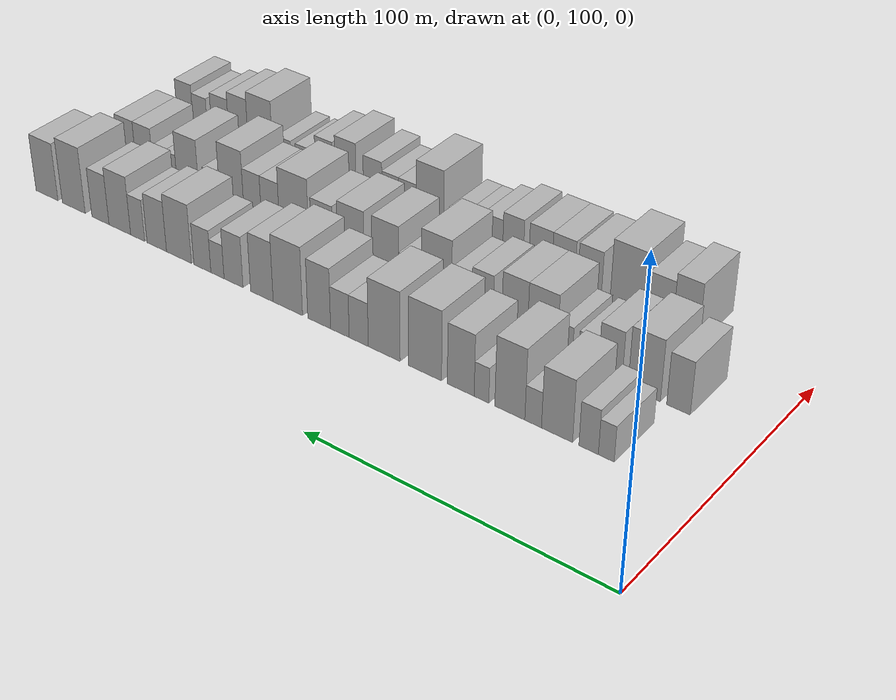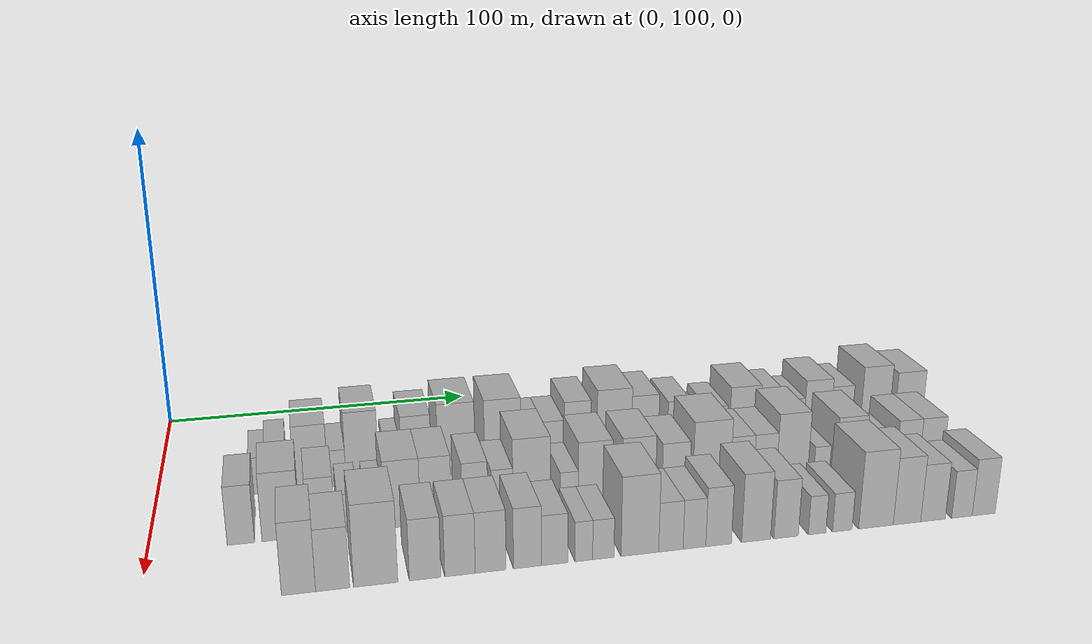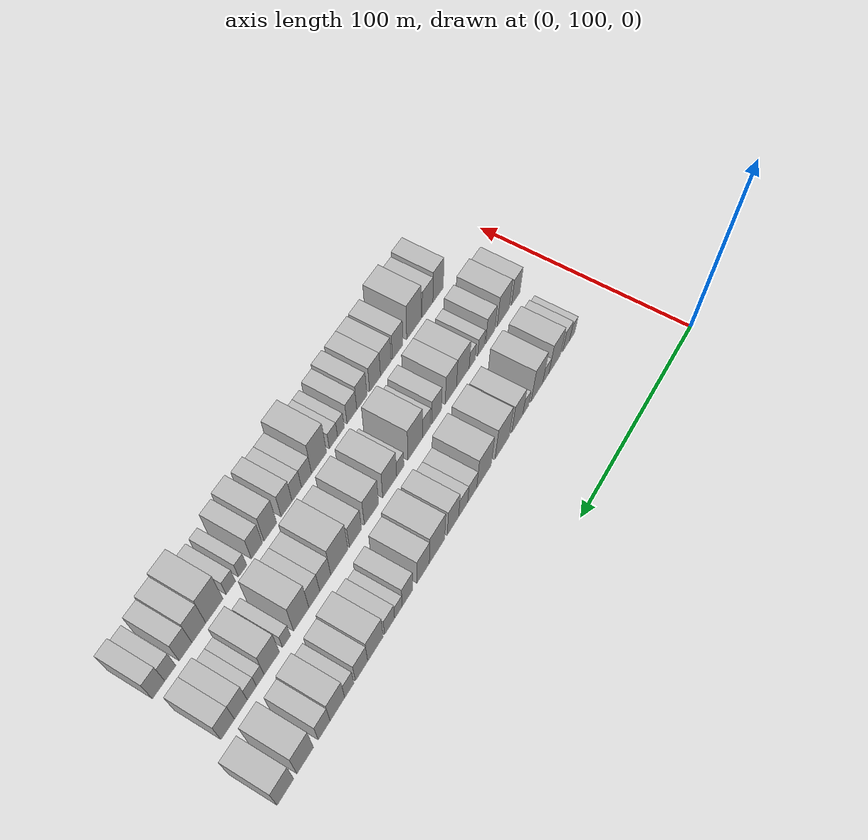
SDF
<sdf version="1.6">
 <world name="default">
  <model name="building_52">
   <static>1</static>
   <pose>50.0000 129.6561 0 0.000000 0.000000 0.000000</pose>
   <link name="link">
    <pose>0 0 6.00 0 0 0</pose>
    <collision name="collision"><geometry><box><size>20.0000 4.9293 12.0000</size></box></geometry></collision>
    <visual name="visual">
     <cast_shadows>0</cast_shadows>
     <geometry><box><size>20.0000 4.9293 12.0000</size></box></geometry>
     <material>
      <script>
       <uri>model://HANNAS_wall/materials/scripts</uri>
       <uri>model://HANNAS_wall/materials/textures</uri>
       <name>vrc/HANNAS_wall</name>
      </script>
     </material>
    </visual>
   </link>
  </model>
  <model name="building_53">
   <static>1</static>
   <pose>50.0000 135.1810 0 0.000000 0.000000 0.000000</pose>
   <link name="link">
    <pose>0 0 7.50 0 0 0</pose>
    <collision name="collision"><geometry><box><size>20.0000 6.1205 15.0000</size></box></geometry></collision>
    <visual name="visual">
     <cast_shadows>0</cast_shadows>
     <geometry><box><size>20.0000 6.1205 15.0000</size></box></geometry>
     <material>
      <script>
       <uri>model://HANNAS_wall/materials/scripts</uri>
       <uri>model://HANNAS_wall/materials/textures</uri>
       <name>vrc/HANNAS_wall</name>
      </script>
     </material>
    </visual>
   </link>
  </model>
  <model name="building_54">
   <static>1</static>
   <pose>50.0000 145.2424 0 0.000000 0.000000 0.000000</pose>
   <link name="link">
    <pose>0 0 10.50 0 0 0</pose>
    <collision name="collision"><geometry><box><size>20.0000 10.0023 21.0000</size></box></geometry></collision>
    <visual name="visual">
     <cast_shadows>0</cast_shadows>
     <geometry><box><size>20.0000 10.0023 21.0000</size></box></geometry>
     <material>
      <script>
       <uri>model://HANNAS_wall/materials/scripts</uri>
       <uri>model://HANNAS_wall/materials/textures</uri>
       <name>vrc/HANNAS_wall</name>
      </script>
     </material>
    </visual>
   </link>
  </model>
  <model name="building_55">
   <static>1</static>
   <pose>50.0000 152.9519 0 0.000000 0.000000 0.000000</pose>
   <link name="link">
    <pose>0 0 6.00 0 0 0</pose>
    <collision name="collision"><geometry><box><size>20.0000 5.4168 12.0000</size></box></geometry></collision>
    <visual name="visual">
     <cast_shadows>0</cast_shadows>
     <geometry><box><size>20.0000 5.4168 12.0000</size></box></geometry>
     <material>
      <script>
       <uri>model://HANNAS_wall/materials/scripts</uri>
       <uri>model://HANNAS_wall/materials/textures</uri>
       <name>vrc/HANNAS_wall</name>
      </script>
     </material>
    </visual>
   </link>
  </model>
  <model name="building_56">
   <static>1</static>
   <pose>50.0000 160.6344 0 0.000000 0.000000 0.000000</pose>
   <link name="link">
    <pose>0 0 12.00 0 0 0</pose>
    <collision name="collision"><geometry><box><size>20.0000 9.9482 24.0000</size></box></geometry></collision>
    <visual name="visual">
     <cast_shadows>0</cast_shadows>
     <geometry><box><size>20.0000 9.9482 24.0000</size></box></geometry>
     <material>
      <script>
       <uri>model://HANNAS_wall/materials/scripts</uri>
       <uri>model://HANNAS_wall/materials/textures</uri>
       <name>vrc/HANNAS_wall</name>
      </script>
     </material>
    </visual>
   </link>
  </model>
  <model name="building_57">
   <static>1</static>
   <pose>50.0000 170.0796 0 0.000000 0.000000 0.000000</pose>
   <link name="link">
    <pose>0 0 6.00 0 0 0</pose>
    <collision name="collision"><geometry><box><size>20.0000 4.9422 12.0000</size></box></geometry></collision>
    <visual name="visual">
     <cast_shadows>0</cast_shadows>
     <geometry><box><size>20.0000 4.9422 12.0000</size></box></geometry>
     <material>
      <script>
       <uri>model://HANNAS_wall/materials/scripts</uri>
       <uri>model://HANNAS_wall/materials/textures</uri>
       <name>vrc/HANNAS_wall</name>
      </script>
     </material>
    </visual>
   </link>
  </model>
  <model name="building_58">
   <static>1</static>
   <pose>50.0000 177.1458 0 0.000000 0.000000 0.000000</pose>
   <link name="link">
    <pose>0 0 10.50 0 0 0</pose>
    <collision name="collision"><geometry><box><size>20.0000 9.1904 21.0000</size></box></geometry></collision>
    <visual name="visual">
     <cast_shadows>0</cast_shadows>
     <geometry><box><size>20.0000 9.1904 21.0000</size></box></geometry>
     <material>
      <script>
       <uri>model://HANNAS_wall/materials/scripts</uri>
       <uri>model://HANNAS_wall/materials/textures</uri>
       <name>vrc/HANNAS_wall</name>
      </script>
     </material>
    </visual>
   </link>
  </model>
  <model name="building_59">
   <static>1</static>
   <pose>50.0000 189.5216 0 0.000000 0.000000 0.000000</pose>
   <link name="link">
    <pose>0 0 12.00 0 0 0</pose>
    <collision name="collision"><geometry><box><size>20.0000 11.5612 24.0000</size></box></geometry></collision>
    <visual name="visual">
     <cast_shadows>0</cast_shadows>
     <geometry><box><size>20.0000 11.5612 24.0000</size></box></geometry>
     <material>
      <script>
       <uri>model://HANNAS_wall/materials/scripts</uri>
       <uri>model://HANNAS_wall/materials/textures</uri>
       <name>vrc/HANNAS_wall</name>
      </script>
     </material>
    </visual>
   </link>
  </model>
  <model name="building_60">
   <static>1</static>
   <pose>50.0000 204.0423 0 0.000000 0.000000 0.000000</pose>
   <link name="link">
    <pose>0 0 12.00 0 0 0</pose>
    <collision name="collision"><geometry><box><size>20.0000 11.4802 24.0000</size></box></geometry></collision>
    <visual name="visual">
     <cast_shadows>0</cast_shadows>
     <geometry><box><size>20.0000 11.4802 24.0000</size></box></geometry>
     <material>
      <script>
       <uri>model://HANNAS_wall/materials/scripts</uri>
       <uri>model://HANNAS_wall/materials/textures</uri>
       <name>vrc/HANNAS_wall</name>
      </script>
     </material>
    </visual>
   </link>
  </model>
  <model name="building_61">
   <static>1</static>
   <pose>50.0000 213.2838 0 0.000000 0.000000 0.000000</pose>
   <link name="link">
    <pose>0 0 7.50 0 0 0</pose>
    <collision name="collision"><geometry><box><size>20.0000 7.0029 15.0000</size></box></geometry></collision>
    <visual name="visual">
     <cast_shadows>0</cast_shadows>
     <geometry><box><size>20.0000 7.0029 15.0000</size></box></geometry>
     <material>
      <script>
       <uri>model://HANNAS_wall/materials/scripts</uri>
       <uri>model://HANNAS_wall/materials/textures</uri>
       <name>vrc/HANNAS_wall</name>
      </script>
     </material>
    </visual>
   </link>
  </model>
  <model name="building_62">
   <static>1</static>
   <pose>50.0000 220.2351 0 0.000000 0.000000 0.000000</pose>
   <link name="link">
    <pose>0 0 7.50 0 0 0</pose>
    <collision name="collision"><geometry><box><size>20.0000 6.8997 15.0000</size></box></geometry></collision>
    <visual name="visual">
     <cast_shadows>0</cast_shadows>
     <geometry><box><size>20.0000 6.8997 15.0000</size></box></geometry>
     <material>
      <script>
       <uri>model://HANNAS_wall/materials/scripts</uri>
       <uri>model://HANNAS_wall/materials/textures</uri>
       <name>vrc/HANNAS_wall</name>
      </script>
     </material>
    </visual>
   </link>
  </model>
  <model name="building_63">
   <static>1</static>
   <pose>50.0000 227.9843 0 0.000000 0.000000 0.000000</pose>
   <link name="link">
    <pose>0 0 10.50 0 0 0</pose>
    <collision name="collision"><geometry><box><size>20.0000 8.5986 21.0000</size></box></geometry></collision>
    <visual name="visual">
     <cast_shadows>0</cast_shadows>
     <geometry><box><size>20.0000 8.5986 21.0000</size></box></geometry>
     <material>
      <script>
       <uri>model://HANNAS_wall/materials/scripts</uri>
       <uri>model://HANNAS_wall/materials/textures</uri>
       <name>vrc/HANNAS_wall</name>
      </script>
     </material>
    </visual>
   </link>
  </model>
  <model name="building_64">
   <static>1</static>
   <pose>50.0000 239.9425 0 0.000000 0.000000 0.000000</pose>
   <link name="link">
    <pose>0 0 12.00 0 0 0</pose>
    <collision name="collision"><geometry><box><size>20.0000 11.3178 24.0000</size></box></geometry></collision>
    <visual name="visual">
     <cast_shadows>0</cast_shadows>
     <geometry><box><size>20.0000 11.3178 24.0000</size></box></geometry>
     <material>
      <script>
       <uri>model://HANNAS_wall/materials/scripts</uri>
       <uri>model://HANNAS_wall/materials/textures</uri>
       <name>vrc/HANNAS_wall</name>
      </script>
     </material>
    </visual>
   </link>
  </model>
  <model name="building_65">
   <static>1</static>
   <pose>50.0000 250.0426 0 0.000000 0.000000 0.000000</pose>
   <link name="link">
    <pose>0 0 10.50 0 0 0</pose>
    <collision name="collision"><geometry><box><size>20.0000 8.8824 21.0000</size></box></geometry></collision>
    <visual name="visual">
     <cast_shadows>0</cast_shadows>
     <geometry><box><size>20.0000 8.8824 21.0000</size></box></geometry>
     <material>
      <script>
       <uri>model://HANNAS_wall/materials/scripts</uri>
       <uri>model://HANNAS_wall/materials/textures</uri>
       <name>vrc/HANNAS_wall</name>
      </script>
     </material>
    </visual>
   </link>
  </model>
  <model name="building_66">
   <static>1</static>
   <pose>50.0000 261.2840 0 0.000000 0.000000 0.000000</pose>
   <link name="link">
    <pose>0 0 9.00 0 0 0</pose>
    <collision name="collision"><geometry><box><size>20.0000 7.6004 18.0000</size></box></geometry></collision>
    <visual name="visual">
     <cast_shadows>0</cast_shadows>
     <geometry><box><size>20.0000 7.6004 18.0000</size></box></geometry>
     <material>
      <script>
       <uri>model://HANNAS_wall/materials/scripts</uri>
       <uri>model://HANNAS_wall/materials/textures</uri>
       <name>vrc/HANNAS_wall</name>
      </script>
     </material>
    </visual>
   </link>
  </model>
  <model name="building_67">
   <static>1</static>
   <pose>50.0000 267.7553 0 0.000000 0.000000 0.000000</pose>
   <link name="link">
    <pose>0 0 6.00 0 0 0</pose>
    <collision name="collision"><geometry><box><size>20.0000 5.3422 12.0000</size></box></geometry></collision>
    <visual name="visual">
     <cast_shadows>0</cast_shadows>
     <geometry><box><size>20.0000 5.3422 12.0000</size></box></geometry>
     <material>
      <script>
       <uri>model://HANNAS_wall/materials/scripts</uri>
       <uri>model://HANNAS_wall/materials/textures</uri>
       <name>vrc/HANNAS_wall</name>
      </script>
     </material>
    </visual>
   </link>
  </model>
  <model name="building_68">
   <static>1</static>
   <pose>50.0000 273.9213 0 0.000000 0.000000 0.000000</pose>
   <link name="link">
    <pose>0 0 7.50 0 0 0</pose>
    <collision name="collision"><geometry><box><size>20.0000 6.9897 15.0000</size></box></geometry></collision>
    <visual name="visual">
     <cast_shadows>0</cast_shadows>
     <geometry><box><size>20.0000 6.9897 15.0000</size></box></geometry>
     <material>
      <script>
       <uri>model://HANNAS_wall/materials/scripts</uri>
       <uri>model://HANNAS_wall/materials/textures</uri>
       <name>vrc/HANNAS_wall</name>
      </script>
     </material>
    </visual>
   </link>
  </model>
  <model name="building_69">
   <static>1</static>
   <pose>50.0000 283.6248 0 0.000000 0.000000 0.000000</pose>
   <link name="link">
    <pose>0 0 10.50 0 0 0</pose>
    <collision name="collision"><geometry><box><size>20.0000 10.4175 21.0000</size></box></geometry></collision>
    <visual name="visual">
     <cast_shadows>0</cast_shadows>
     <geometry><box><size>20.0000 10.4175 21.0000</size></box></geometry>
     <material>
      <script>
       <uri>model://HANNAS_wall/materials/scripts</uri>
       <uri>model://HANNAS_wall/materials/textures</uri>
       <name>vrc/HANNAS_wall</name>
      </script>
     </material>
    </visual>
   </link>
  </model>
  <model name="building_70">
   <static>1</static>
   <pose>50.0000 292.9698 0 0.000000 0.000000 0.000000</pose>
   <link name="link">
    <pose>0 0 9.00 0 0 0</pose>
    <collision name="collision"><geometry><box><size>20.0000 8.2724 18.0000</size></box></geometry></collision>
    <visual name="visual">
     <cast_shadows>0</cast_shadows>
     <geometry><box><size>20.0000 8.2724 18.0000</size></box></geometry>
     <material>
      <script>
       <uri>model://HANNAS_wall/materials/scripts</uri>
       <uri>model://HANNAS_wall/materials/textures</uri>
       <name>vrc/HANNAS_wall</name>
      </script>
     </material>
    </visual>
   </link>
  </model>
  <model name="building_71">
   <static>1</static>
   <pose>50.0000 301.1170 0 0.000000 0.000000 0.000000</pose>
   <link name="link">
    <pose>0 0 7.50 0 0 0</pose>
    <collision name="collision"><geometry><box><size>20.0000 6.0219 15.0000</size></box></geometry></collision>
    <visual name="visual">
     <cast_shadows>0</cast_shadows>
     <geometry><box><size>20.0000 6.0219 15.0000</size></box></geometry>
     <material>
      <script>
       <uri>model://HANNAS_wall/materials/scripts</uri>
       <uri>model://HANNAS_wall/materials/textures</uri>
       <name>vrc/HANNAS_wall</name>
      </script>
     </material>
    </visual>
   </link>
  </model>
  <model name="building_72">
   <static>1</static>
   <pose>50.0000 308.8491 0 0.000000 0.000000 0.000000</pose>
   <link name="link">
    <pose>0 0 10.50 0 0 0</pose>
    <collision name="collision"><geometry><box><size>20.0000 9.4423 21.0000</size></box></geometry></collision>
    <visual name="visual">
     <cast_shadows>0</cast_shadows>
     <geometry><box><size>20.0000 9.4423 21.0000</size></box></geometry>
     <material>
      <script>
       <uri>model://HANNAS_wall/materials/scripts</uri>
       <uri>model://HANNAS_wall/materials/textures</uri>
       <name>vrc/HANNAS_wall</name>
      </script>
     </material>
    </visual>
   </link>
  </model>
  <model name="building_73">
   <static>1</static>
   <pose>50.0000 317.3691 0 0.000000 0.000000 0.000000</pose>
   <link name="link">
    <pose>0 0 9.00 0 0 0</pose>
    <collision name="collision"><geometry><box><size>20.0000 7.5978 18.0000</size></box></geometry></collision>
    <visual name="visual">
     <cast_shadows>0</cast_shadows>
     <geometry><box><size>20.0000 7.5978 18.0000</size></box></geometry>
     <material>
      <script>
       <uri>model://HANNAS_wall/materials/scripts</uri>
       <uri>model://HANNAS_wall/materials/textures</uri>
       <name>vrc/HANNAS_wall</name>
      </script>
     </material>
    </visual>
   </link>
  </model>
  <model name="building_74">
   <static>1</static>
   <pose>50.0000 329.3266 0 0.000000 0.000000 0.000000</pose>
   <link name="link">
    <pose>0 0 12.00 0 0 0</pose>
    <collision name="collision"><geometry><box><size>20.0000 10.3170 24.0000</size></box></geometry></collision>
    <visual name="visual">
     <cast_shadows>0</cast_shadows>
     <geometry><box><size>20.0000 10.3170 24.0000</size></box></geometry>
     <material>
      <script>
       <uri>model://HANNAS_wall/materials/scripts</uri>
       <uri>model://HANNAS_wall/materials/textures</uri>
       <name>vrc/HANNAS_wall</name>
      </script>
     </material>
    </visual>
   </link>
  </model>
  <model name="building_75">
   <static>1</static>
   <pose>50.0000 341.5349 0 0.000000 0.000000 0.000000</pose>
   <link name="link">
    <pose>0 0 10.50 0 0 0</pose>
    <collision name="collision"><geometry><box><size>20.0000 10.0997 21.0000</size></box></geometry></collision>
    <visual name="visual">
     <cast_shadows>0</cast_shadows>
     <geometry><box><size>20.0000 10.0997 21.0000</size></box></geometry>
     <material>
      <script>
       <uri>model://HANNAS_wall/materials/scripts</uri>
       <uri>model://HANNAS_wall/materials/textures</uri>
       <name>vrc/HANNAS_wall</name>
      </script>
     </material>
    </visual>
   </link>
  </model>
  <model name="building_126">
   <static>1</static>
   <pose>79.0000 124.9476 0 0.000000 0.000000 0.000000</pose>
   <link name="link">
    <pose>0 0 9.00 0 0 0</pose>
    <collision name="collision"><geometry><box><size>20.0000 7.4198 18.0000</size></box></geometry></collision>
    <visual name="visual">
     <cast_shadows>0</cast_shadows>
     <geometry><box><size>20.0000 7.4198 18.0000</size></box></geometry>
     <material>
      <script>
       <uri>model://HANNAS_wall/materials/scripts</uri>
       <uri>model://HANNAS_wall/materials/textures</uri>
       <name>vrc/HANNAS_wall</name>
      </script>
     </material>
    </visual>
   </link>
  </model>
  <model name="building_127">
   <static>1</static>
   <pose>79.0000 135.8607 0 0.000000 0.000000 0.000000</pose>
   <link name="link">
    <pose>0 0 10.50 0 0 0</pose>
    <collision name="collision"><geometry><box><size>20.0000 10.4065 21.0000</size></box></geometry></collision>
    <visual name="visual">
     <cast_shadows>0</cast_shadows>
     <geometry><box><size>20.0000 10.4065 21.0000</size></box></geometry>
     <material>
      <script>
       <uri>model://HANNAS_wall/materials/scripts</uri>
       <uri>model://HANNAS_wall/materials/textures</uri>
       <name>vrc/HANNAS_wall</name>
      </script>
     </material>
    </visual>
   </link>
  </model>
  <model name="building_128">
   <static>1</static>
   <pose>79.0000 146.9620 0 0.000000 0.000000 0.000000</pose>
   <link name="link">
    <pose>0 0 9.00 0 0 0</pose>
    <collision name="collision"><geometry><box><size>20.0000 7.7961 18.0000</size></box></geometry></collision>
    <visual name="visual">
     <cast_shadows>0</cast_shadows>
     <geometry><box><size>20.0000 7.7961 18.0000</size></box></geometry>
     <material>
      <script>
       <uri>model://HANNAS_wall/materials/scripts</uri>
       <uri>model://HANNAS_wall/materials/textures</uri>
       <name>vrc/HANNAS_wall</name>
      </script>
     </material>
    </visual>
   </link>
  </model>
  <model name="building_129">
   <static>1</static>
   <pose>79.0000 154.6950 0 0.000000 0.000000 0.000000</pose>
   <link name="link">
    <pose>0 0 6.00 0 0 0</pose>
    <collision name="collision"><geometry><box><size>20.0000 5.6698 12.0000</size></box></geometry></collision>
    <visual name="visual">
     <cast_shadows>0</cast_shadows>
     <geometry><box><size>20.0000 5.6698 12.0000</size></box></geometry>
     <material>
      <script>
       <uri>model://HANNAS_wall/materials/scripts</uri>
       <uri>model://HANNAS_wall/materials/textures</uri>
       <name>vrc/HANNAS_wall</name>
      </script>
     </material>
    </visual>
   </link>
  </model>
  <model name="building_130">
   <static>1</static>
   <pose>79.0000 162.0676 0 0.000000 0.000000 0.000000</pose>
   <link name="link">
    <pose>0 0 6.00 0 0 0</pose>
    <collision name="collision"><geometry><box><size>20.0000 5.0755 12.0000</size></box></geometry></collision>
    <visual name="visual">
     <cast_shadows>0</cast_shadows>
     <geometry><box><size>20.0000 5.0755 12.0000</size></box></geometry>
     <material>
      <script>
       <uri>model://HANNAS_wall/materials/scripts</uri>
       <uri>model://HANNAS_wall/materials/textures</uri>
       <name>vrc/HANNAS_wall</name>
      </script>
     </material>
    </visual>
   </link>
  </model>
  <model name="building_131">
   <static>1</static>
   <pose>79.0000 169.7455 0 0.000000 0.000000 0.000000</pose>
   <link name="link">
    <pose>0 0 10.50 0 0 0</pose>
    <collision name="collision"><geometry><box><size>20.0000 10.2802 21.0000</size></box></geometry></collision>
    <visual name="visual">
     <cast_shadows>0</cast_shadows>
     <geometry><box><size>20.0000 10.2802 21.0000</size></box></geometry>
     <material>
      <script>
       <uri>model://HANNAS_wall/materials/scripts</uri>
       <uri>model://HANNAS_wall/materials/textures</uri>
       <name>vrc/HANNAS_wall</name>
      </script>
     </material>
    </visual>
   </link>
  </model>
  <model name="building_132">
   <static>1</static>
   <pose>79.0000 179.3793 0 0.000000 0.000000 0.000000</pose>
   <link name="link">
    <pose>0 0 10.50 0 0 0</pose>
    <collision name="collision"><geometry><box><size>20.0000 8.9875 21.0000</size></box></geometry></collision>
    <visual name="visual">
     <cast_shadows>0</cast_shadows>
     <geometry><box><size>20.0000 8.9875 21.0000</size></box></geometry>
     <material>
      <script>
       <uri>model://HANNAS_wall/materials/scripts</uri>
       <uri>model://HANNAS_wall/materials/textures</uri>
       <name>vrc/HANNAS_wall</name>
      </script>
     </material>
    </visual>
   </link>
  </model>
  <model name="building_133">
   <static>1</static>
   <pose>79.0000 190.6568 0 0.000000 0.000000 0.000000</pose>
   <link name="link">
    <pose>0 0 9.00 0 0 0</pose>
    <collision name="collision"><geometry><box><size>20.0000 7.5674 18.0000</size></box></geometry></collision>
    <visual name="visual">
     <cast_shadows>0</cast_shadows>
     <geometry><box><size>20.0000 7.5674 18.0000</size></box></geometry>
     <material>
      <script>
       <uri>model://HANNAS_wall/materials/scripts</uri>
       <uri>model://HANNAS_wall/materials/textures</uri>
       <name>vrc/HANNAS_wall</name>
      </script>
     </material>
    </visual>
   </link>
  </model>
  <model name="building_134">
   <static>1</static>
   <pose>79.0000 198.6033 0 0.000000 0.000000 0.000000</pose>
   <link name="link">
    <pose>0 0 7.50 0 0 0</pose>
    <collision name="collision"><geometry><box><size>20.0000 6.3257 15.0000</size></box></geometry></collision>
    <visual name="visual">
     <cast_shadows>0</cast_shadows>
     <geometry><box><size>20.0000 6.3257 15.0000</size></box></geometry>
     <material>
      <script>
       <uri>model://HANNAS_wall/materials/scripts</uri>
       <uri>model://HANNAS_wall/materials/textures</uri>
       <name>vrc/HANNAS_wall</name>
      </script>
     </material>
    </visual>
   </link>
  </model>
  <model name="building_135">
   <static>1</static>
   <pose>79.0000 207.2955 0 0.000000 0.000000 0.000000</pose>
   <link name="link">
    <pose>0 0 12.00 0 0 0</pose>
    <collision name="collision"><geometry><box><size>20.0000 11.0586 24.0000</size></box></geometry></collision>
    <visual name="visual">
     <cast_shadows>0</cast_shadows>
     <geometry><box><size>20.0000 11.0586 24.0000</size></box></geometry>
     <material>
      <script>
       <uri>model://HANNAS_wall/materials/scripts</uri>
       <uri>model://HANNAS_wall/materials/textures</uri>
       <name>vrc/HANNAS_wall</name>
      </script>
     </material>
    </visual>
   </link>
  </model>
  <model name="building_136">
   <static>1</static>
   <pose>79.0000 218.5297 0 0.000000 0.000000 0.000000</pose>
   <link name="link">
    <pose>0 0 6.00 0 0 0</pose>
    <collision name="collision"><geometry><box><size>20.0000 5.4097 12.0000</size></box></geometry></collision>
    <visual name="visual">
     <cast_shadows>0</cast_shadows>
     <geometry><box><size>20.0000 5.4097 12.0000</size></box></geometry>
     <material>
      <script>
       <uri>model://HANNAS_wall/materials/scripts</uri>
       <uri>model://HANNAS_wall/materials/textures</uri>
       <name>vrc/HANNAS_wall</name>
      </script>
     </material>
    </visual>
   </link>
  </model>
  <model name="building_137">
   <static>1</static>
   <pose>79.0000 226.3586 0 0.000000 0.000000 0.000000</pose>
   <link name="link">
    <pose>0 0 10.50 0 0 0</pose>
    <collision name="collision"><geometry><box><size>20.0000 10.2482 21.0000</size></box></geometry></collision>
    <visual name="visual">
     <cast_shadows>0</cast_shadows>
     <geometry><box><size>20.0000 10.2482 21.0000</size></box></geometry>
     <material>
      <script>
       <uri>model://HANNAS_wall/materials/scripts</uri>
       <uri>model://HANNAS_wall/materials/textures</uri>
       <name>vrc/HANNAS_wall</name>
      </script>
     </material>
    </visual>
   </link>
  </model>
  <model name="building_138">
   <static>1</static>
   <pose>79.0000 239.6009 0 0.000000 0.000000 0.000000</pose>
   <link name="link">
    <pose>0 0 10.50 0 0 0</pose>
    <collision name="collision"><geometry><box><size>20.0000 10.2364 21.0000</size></box></geometry></collision>
    <visual name="visual">
     <cast_shadows>0</cast_shadows>
     <geometry><box><size>20.0000 10.2364 21.0000</size></box></geometry>
     <material>
      <script>
       <uri>model://HANNAS_wall/materials/scripts</uri>
       <uri>model://HANNAS_wall/materials/textures</uri>
       <name>vrc/HANNAS_wall</name>
      </script>
     </material>
    </visual>
   </link>
  </model>
  <model name="building_139">
   <static>1</static>
   <pose>79.0000 251.0037 0 0.000000 0.000000 0.000000</pose>
   <link name="link">
    <pose>0 0 9.00 0 0 0</pose>
    <collision name="collision"><geometry><box><size>20.0000 8.5693 18.0000</size></box></geometry></collision>
    <visual name="visual">
     <cast_shadows>0</cast_shadows>
     <geometry><box><size>20.0000 8.5693 18.0000</size></box></geometry>
     <material>
      <script>
       <uri>model://HANNAS_wall/materials/scripts</uri>
       <uri>model://HANNAS_wall/materials/textures</uri>
       <name>vrc/HANNAS_wall</name>
      </script>
     </material>
    </visual>
   </link>
  </model>
  <model name="building_140">
   <static>1</static>
   <pose>79.0000 262.2186 0 0.000000 0.000000 0.000000</pose>
   <link name="link">
    <pose>0 0 12.00 0 0 0</pose>
    <collision name="collision"><geometry><box><size>20.0000 11.8604 24.0000</size></box></geometry></collision>
    <visual name="visual">
     <cast_shadows>0</cast_shadows>
     <geometry><box><size>20.0000 11.8604 24.0000</size></box></geometry>
     <material>
      <script>
       <uri>model://HANNAS_wall/materials/scripts</uri>
       <uri>model://HANNAS_wall/materials/textures</uri>
       <name>vrc/HANNAS_wall</name>
      </script>
     </material>
    </visual>
   </link>
  </model>
  <model name="building_141">
   <static>1</static>
   <pose>79.0000 271.8702 0 0.000000 0.000000 0.000000</pose>
   <link name="link">
    <pose>0 0 9.00 0 0 0</pose>
    <collision name="collision"><geometry><box><size>20.0000 7.4430 18.0000</size></box></geometry></collision>
    <visual name="visual">
     <cast_shadows>0</cast_shadows>
     <geometry><box><size>20.0000 7.4430 18.0000</size></box></geometry>
     <material>
      <script>
       <uri>model://HANNAS_wall/materials/scripts</uri>
       <uri>model://HANNAS_wall/materials/textures</uri>
       <name>vrc/HANNAS_wall</name>
      </script>
     </material>
    </visual>
   </link>
  </model>
  <model name="building_142">
   <static>1</static>
   <pose>79.0000 279.2369 0 0.000000 0.000000 0.000000</pose>
   <link name="link">
    <pose>0 0 9.00 0 0 0</pose>
    <collision name="collision"><geometry><box><size>20.0000 7.2904 18.0000</size></box></geometry></collision>
    <visual name="visual">
     <cast_shadows>0</cast_shadows>
     <geometry><box><size>20.0000 7.2904 18.0000</size></box></geometry>
     <material>
      <script>
       <uri>model://HANNAS_wall/materials/scripts</uri>
       <uri>model://HANNAS_wall/materials/textures</uri>
       <name>vrc/HANNAS_wall</name>
      </script>
     </material>
    </visual>
   </link>
  </model>
  <model name="building_143">
   <static>1</static>
   <pose>79.0000 287.9382 0 0.000000 0.000000 0.000000</pose>
   <link name="link">
    <pose>0 0 12.00 0 0 0</pose>
    <collision name="collision"><geometry><box><size>20.0000 10.1121 24.0000</size></box></geometry></collision>
    <visual name="visual">
     <cast_shadows>0</cast_shadows>
     <geometry><box><size>20.0000 10.1121 24.0000</size></box></geometry>
     <material>
      <script>
       <uri>model://HANNAS_wall/materials/scripts</uri>
       <uri>model://HANNAS_wall/materials/textures</uri>
       <name>vrc/HANNAS_wall</name>
      </script>
     </material>
    </visual>
   </link>
  </model>
  <model name="building_144">
   <static>1</static>
   <pose>79.0000 297.5555 0 0.000000 0.000000 0.000000</pose>
   <link name="link">
    <pose>0 0 6.00 0 0 0</pose>
    <collision name="collision"><geometry><box><size>20.0000 5.1225 12.0000</size></box></geometry></collision>
    <visual name="visual">
     <cast_shadows>0</cast_shadows>
     <geometry><box><size>20.0000 5.1225 12.0000</size></box></geometry>
     <material>
      <script>
       <uri>model://HANNAS_wall/materials/scripts</uri>
       <uri>model://HANNAS_wall/materials/textures</uri>
       <name>vrc/HANNAS_wall</name>
      </script>
     </material>
    </visual>
   </link>
  </model>
  <model name="building_145">
   <static>1</static>
   <pose>79.0000 306.9156 0 0.000000 0.000000 0.000000</pose>
   <link name="link">
    <pose>0 0 10.50 0 0 0</pose>
    <collision name="collision"><geometry><box><size>20.0000 9.5977 21.0000</size></box></geometry></collision>
    <visual name="visual">
     <cast_shadows>0</cast_shadows>
     <geometry><box><size>20.0000 9.5977 21.0000</size></box></geometry>
     <material>
      <script>
       <uri>model://HANNAS_wall/materials/scripts</uri>
       <uri>model://HANNAS_wall/materials/textures</uri>
       <name>vrc/HANNAS_wall</name>
      </script>
     </material>
    </visual>
   </link>
  </model>
  <model name="building_146">
   <static>1</static>
   <pose>79.0000 314.1349 0 0.000000 0.000000 0.000000</pose>
   <link name="link">
    <pose>0 0 6.00 0 0 0</pose>
    <collision name="collision"><geometry><box><size>20.0000 4.8409 12.0000</size></box></geometry></collision>
    <visual name="visual">
     <cast_shadows>0</cast_shadows>
     <geometry><box><size>20.0000 4.8409 12.0000</size></box></geometry>
     <material>
      <script>
       <uri>model://HANNAS_wall/materials/scripts</uri>
       <uri>model://HANNAS_wall/materials/textures</uri>
       <name>vrc/HANNAS_wall</name>
      </script>
     </material>
    </visual>
   </link>
  </model>
  <model name="building_147">
   <static>1</static>
   <pose>79.0000 319.4008 0 0.000000 0.000000 0.000000</pose>
   <link name="link">
    <pose>0 0 6.00 0 0 0</pose>
    <collision name="collision"><geometry><box><size>20.0000 5.6909 12.0000</size></box></geometry></collision>
    <visual name="visual">
     <cast_shadows>0</cast_shadows>
     <geometry><box><size>20.0000 5.6909 12.0000</size></box></geometry>
     <material>
      <script>
       <uri>model://HANNAS_wall/materials/scripts</uri>
       <uri>model://HANNAS_wall/materials/textures</uri>
       <name>vrc/HANNAS_wall</name>
      </script>
     </material>
    </visual>
   </link>
  </model>
  <model name="building_148">
   <static>1</static>
   <pose>79.0000 326.1610 0 0.000000 0.000000 0.000000</pose>
   <link name="link">
    <pose>0 0 9.00 0 0 0</pose>
    <collision name="collision"><geometry><box><size>20.0000 7.8294 18.0000</size></box></geometry></collision>
    <visual name="visual">
     <cast_shadows>0</cast_shadows>
     <geometry><box><size>20.0000 7.8294 18.0000</size></box></geometry>
     <material>
      <script>
       <uri>model://HANNAS_wall/materials/scripts</uri>
       <uri>model://HANNAS_wall/materials/textures</uri>
       <name>vrc/HANNAS_wall</name>
      </script>
     </material>
    </visual>
   </link>
  </model>
  <model name="building_149">
   <static>1</static>
   <pose>79.0000 334.1773 0 0.000000 0.000000 0.000000</pose>
   <link name="link">
    <pose>0 0 9.00 0 0 0</pose>
    <collision name="collision"><geometry><box><size>20.0000 8.2032 18.0000</size></box></geometry></collision>
    <visual name="visual">
     <cast_shadows>0</cast_shadows>
     <geometry><box><size>20.0000 8.2032 18.0000</size></box></geometry>
     <material>
      <script>
       <uri>model://HANNAS_wall/materials/scripts</uri>
       <uri>model://HANNAS_wall/materials/textures</uri>
       <name>vrc/HANNAS_wall</name>
      </script>
     </material>
    </visual>
   </link>
  </model>
  <model name="building_190">
   <static>1</static>
   <pose>108.0000 139.9200 0 0.000000 0.000000 0.000000</pose>
   <link name="link">
    <pose>0 0 10.50 0 0 0</pose>
    <collision name="collision"><geometry><box><size>20.0000 8.6772 21.0000</size></box></geometry></collision>
    <visual name="visual">
     <cast_shadows>0</cast_shadows>
     <geometry><box><size>20.0000 8.6772 21.0000</size></box></geometry>
     <material>
      <script>
       <uri>model://HANNAS_wall/materials/scripts</uri>
       <uri>model://HANNAS_wall/materials/textures</uri>
       <name>vrc/HANNAS_wall</name>
      </script>
     </material>
    </visual>
   </link>
  </model>
  <model name="building_191">
   <static>1</static>
   <pose>108.0000 148.6313 0 0.000000 0.000000 0.000000</pose>
   <link name="link">
    <pose>0 0 9.00 0 0 0</pose>
    <collision name="collision"><geometry><box><size>20.0000 8.7455 18.0000</size></box></geometry></collision>
    <visual name="visual">
     <cast_shadows>0</cast_shadows>
     <geometry><box><size>20.0000 8.7455 18.0000</size></box></geometry>
     <material>
      <script>
       <uri>model://HANNAS_wall/materials/scripts</uri>
       <uri>model://HANNAS_wall/materials/textures</uri>
       <name>vrc/HANNAS_wall</name>
      </script>
     </material>
    </visual>
   </link>
  </model>
  <model name="building_192">
   <static>1</static>
   <pose>108.0000 159.7657 0 0.000000 0.000000 0.000000</pose>
   <link name="link">
    <pose>0 0 12.00 0 0 0</pose>
    <collision name="collision"><geometry><box><size>20.0000 11.5233 24.0000</size></box></geometry></collision>
    <visual name="visual">
     <cast_shadows>0</cast_shadows>
     <geometry><box><size>20.0000 11.5233 24.0000</size></box></geometry>
     <material>
      <script>
       <uri>model://HANNAS_wall/materials/scripts</uri>
       <uri>model://HANNAS_wall/materials/textures</uri>
       <name>vrc/HANNAS_wall</name>
      </script>
     </material>
    </visual>
   </link>
  </model>
  <model name="building_193">
   <static>1</static>
   <pose>108.0000 172.7121 0 0.000000 0.000000 0.000000</pose>
   <link name="link">
    <pose>0 0 9.00 0 0 0</pose>
    <collision name="collision"><geometry><box><size>20.0000 8.3693 18.0000</size></box></geometry></collision>
    <visual name="visual">
     <cast_shadows>0</cast_shadows>
     <geometry><box><size>20.0000 8.3693 18.0000</size></box></geometry>
     <material>
      <script>
       <uri>model://HANNAS_wall/materials/scripts</uri>
       <uri>model://HANNAS_wall/materials/textures</uri>
       <name>vrc/HANNAS_wall</name>
      </script>
     </material>
    </visual>
   </link>
  </model>
  <model name="building_194">
   <static>1</static>
   <pose>108.0000 181.9742 0 0.000000 0.000000 0.000000</pose>
   <link name="link">
    <pose>0 0 9.00 0 0 0</pose>
    <collision name="collision"><geometry><box><size>20.0000 8.1548 18.0000</size></box></geometry></collision>
    <visual name="visual">
     <cast_shadows>0</cast_shadows>
     <geometry><box><size>20.0000 8.1548 18.0000</size></box></geometry>
     <material>
      <script>
       <uri>model://HANNAS_wall/materials/scripts</uri>
       <uri>model://HANNAS_wall/materials/textures</uri>
       <name>vrc/HANNAS_wall</name>
      </script>
     </material>
    </visual>
   </link>
  </model>
  <model name="building_195">
   <static>1</static>
   <pose>108.0000 190.2183 0 0.000000 0.000000 0.000000</pose>
   <link name="link">
    <pose>0 0 9.00 0 0 0</pose>
    <collision name="collision"><geometry><box><size>20.0000 8.3335 18.0000</size></box></geometry></collision>
    <visual name="visual">
     <cast_shadows>0</cast_shadows>
     <geometry><box><size>20.0000 8.3335 18.0000</size></box></geometry>
     <material>
      <script>
       <uri>model://HANNAS_wall/materials/scripts</uri>
       <uri>model://HANNAS_wall/materials/textures</uri>
       <name>vrc/HANNAS_wall</name>
      </script>
     </material>
    </visual>
   </link>
  </model>
  <model name="building_196">
   <static>1</static>
   <pose>108.0000 200.1935 0 0.000000 0.000000 0.000000</pose>
   <link name="link">
    <pose>0 0 9.00 0 0 0</pose>
    <collision name="collision"><geometry><box><size>20.0000 7.6169 18.0000</size></box></geometry></collision>
    <visual name="visual">
     <cast_shadows>0</cast_shadows>
     <geometry><box><size>20.0000 7.6169 18.0000</size></box></geometry>
     <material>
      <script>
       <uri>model://HANNAS_wall/materials/scripts</uri>
       <uri>model://HANNAS_wall/materials/textures</uri>
       <name>vrc/HANNAS_wall</name>
      </script>
     </material>
    </visual>
   </link>
  </model>
  <model name="building_197">
   <static>1</static>
   <pose>108.0000 207.6562 0 0.000000 0.000000 0.000000</pose>
   <link name="link">
    <pose>0 0 7.50 0 0 0</pose>
    <collision name="collision"><geometry><box><size>20.0000 7.3085 15.0000</size></box></geometry></collision>
    <visual name="visual">
     <cast_shadows>0</cast_shadows>
     <geometry><box><size>20.0000 7.3085 15.0000</size></box></geometry>
     <material>
      <script>
       <uri>model://HANNAS_wall/materials/scripts</uri>
       <uri>model://HANNAS_wall/materials/textures</uri>
       <name>vrc/HANNAS_wall</name>
      </script>
     </material>
    </visual>
   </link>
  </model>
  <model name="building_198">
   <static>1</static>
   <pose>108.0000 215.7616 0 0.000000 0.000000 0.000000</pose>
   <link name="link">
    <pose>0 0 6.00 0 0 0</pose>
    <collision name="collision"><geometry><box><size>20.0000 4.9023 12.0000</size></box></geometry></collision>
    <visual name="visual">
     <cast_shadows>0</cast_shadows>
     <geometry><box><size>20.0000 4.9023 12.0000</size></box></geometry>
     <material>
      <script>
       <uri>model://HANNAS_wall/materials/scripts</uri>
       <uri>model://HANNAS_wall/materials/textures</uri>
       <name>vrc/HANNAS_wall</name>
      </script>
     </material>
    </visual>
   </link>
  </model>
  <model name="building_199">
   <static>1</static>
   <pose>108.0000 221.2113 0 0.000000 0.000000 0.000000</pose>
   <link name="link">
    <pose>0 0 6.00 0 0 0</pose>
    <collision name="collision"><geometry><box><size>20.0000 5.9969 12.0000</size></box></geometry></collision>
    <visual name="visual">
     <cast_shadows>0</cast_shadows>
     <geometry><box><size>20.0000 5.9969 12.0000</size></box></geometry>
     <material>
      <script>
       <uri>model://HANNAS_wall/materials/scripts</uri>
       <uri>model://HANNAS_wall/materials/textures</uri>
       <name>vrc/HANNAS_wall</name>
      </script>
     </material>
    </visual>
   </link>
  </model>
  <model name="building_200">
   <static>1</static>
   <pose>108.0000 231.5493 0 0.000000 0.000000 0.000000</pose>
   <link name="link">
    <pose>0 0 12.00 0 0 0</pose>
    <collision name="collision"><geometry><box><size>20.0000 10.6793 24.0000</size></box></geometry></collision>
    <visual name="visual">
     <cast_shadows>0</cast_shadows>
     <geometry><box><size>20.0000 10.6793 24.0000</size></box></geometry>
     <material>
      <script>
       <uri>model://HANNAS_wall/materials/scripts</uri>
       <uri>model://HANNAS_wall/materials/textures</uri>
       <name>vrc/HANNAS_wall</name>
      </script>
     </material>
    </visual>
   </link>
  </model>
  <model name="building_201">
   <static>1</static>
   <pose>108.0000 240.3878 0 0.000000 0.000000 0.000000</pose>
   <link name="link">
    <pose>0 0 7.50 0 0 0</pose>
    <collision name="collision"><geometry><box><size>20.0000 6.9976 15.0000</size></box></geometry></collision>
    <visual name="visual">
     <cast_shadows>0</cast_shadows>
     <geometry><box><size>20.0000 6.9976 15.0000</size></box></geometry>
     <material>
      <script>
       <uri>model://HANNAS_wall/materials/scripts</uri>
       <uri>model://HANNAS_wall/materials/textures</uri>
       <name>vrc/HANNAS_wall</name>
      </script>
     </material>
    </visual>
   </link>
  </model>
  <model name="building_202">
   <static>1</static>
   <pose>108.0000 247.1760 0 0.000000 0.000000 0.000000</pose>
   <link name="link">
    <pose>0 0 7.50 0 0 0</pose>
    <collision name="collision"><geometry><box><size>20.0000 6.5788 15.0000</size></box></geometry></collision>
    <visual name="visual">
     <cast_shadows>0</cast_shadows>
     <geometry><box><size>20.0000 6.5788 15.0000</size></box></geometry>
     <material>
      <script>
       <uri>model://HANNAS_wall/materials/scripts</uri>
       <uri>model://HANNAS_wall/materials/textures</uri>
       <name>vrc/HANNAS_wall</name>
      </script>
     </material>
    </visual>
   </link>
  </model>
  <model name="building_203">
   <static>1</static>
   <pose>108.0000 254.1972 0 0.000000 0.000000 0.000000</pose>
   <link name="link">
    <pose>0 0 9.00 0 0 0</pose>
    <collision name="collision"><geometry><box><size>20.0000 7.4636 18.0000</size></box></geometry></collision>
    <visual name="visual">
     <cast_shadows>0</cast_shadows>
     <geometry><box><size>20.0000 7.4636 18.0000</size></box></geometry>
     <material>
      <script>
       <uri>model://HANNAS_wall/materials/scripts</uri>
       <uri>model://HANNAS_wall/materials/textures</uri>
       <name>vrc/HANNAS_wall</name>
      </script>
     </material>
    </visual>
   </link>
  </model>
  <model name="building_204">
   <static>1</static>
   <pose>108.0000 265.2117 0 0.000000 0.000000 0.000000</pose>
   <link name="link">
    <pose>0 0 10.50 0 0 0</pose>
    <collision name="collision"><geometry><box><size>20.0000 8.5655 21.0000</size></box></geometry></collision>
    <visual name="visual">
     <cast_shadows>0</cast_shadows>
     <geometry><box><size>20.0000 8.5655 21.0000</size></box></geometry>
     <material>
      <script>
       <uri>model://HANNAS_wall/materials/scripts</uri>
       <uri>model://HANNAS_wall/materials/textures</uri>
       <name>vrc/HANNAS_wall</name>
      </script>
     </material>
    </visual>
   </link>
  </model>
  <model name="building_205">
   <static>1</static>
   <pose>108.0000 274.1456 0 0.000000 0.000000 0.000000</pose>
   <link name="link">
    <pose>0 0 9.00 0 0 0</pose>
    <collision name="collision"><geometry><box><size>20.0000 7.3022 18.0000</size></box></geometry></collision>
    <visual name="visual">
     <cast_shadows>0</cast_shadows>
     <geometry><box><size>20.0000 7.3022 18.0000</size></box></geometry>
     <material>
      <script>
       <uri>model://HANNAS_wall/materials/scripts</uri>
       <uri>model://HANNAS_wall/materials/textures</uri>
       <name>vrc/HANNAS_wall</name>
      </script>
     </material>
    </visual>
   </link>
  </model>
  <model name="building_206">
   <static>1</static>
   <pose>108.0000 283.4515 0 0.000000 0.000000 0.000000</pose>
   <link name="link">
    <pose>0 0 6.00 0 0 0</pose>
    <collision name="collision"><geometry><box><size>20.0000 5.3095 12.0000</size></box></geometry></collision>
    <visual name="visual">
     <cast_shadows>0</cast_shadows>
     <geometry><box><size>20.0000 5.3095 12.0000</size></box></geometry>
     <material>
      <script>
       <uri>model://HANNAS_wall/materials/scripts</uri>
       <uri>model://HANNAS_wall/materials/textures</uri>
       <name>vrc/HANNAS_wall</name>
      </script>
     </material>
    </visual>
   </link>
  </model>
  <model name="building_207">
   <static>1</static>
   <pose>108.0000 291.0915 0 0.000000 0.000000 0.000000</pose>
   <link name="link">
    <pose>0 0 6.00 0 0 0</pose>
    <collision name="collision"><geometry><box><size>20.0000 5.9704 12.0000</size></box></geometry></collision>
    <visual name="visual">
     <cast_shadows>0</cast_shadows>
     <geometry><box><size>20.0000 5.9704 12.0000</size></box></geometry>
     <material>
      <script>
       <uri>model://HANNAS_wall/materials/scripts</uri>
       <uri>model://HANNAS_wall/materials/textures</uri>
       <name>vrc/HANNAS_wall</name>
      </script>
     </material>
    </visual>
   </link>
  </model>
  <model name="building_208">
   <static>1</static>
   <pose>108.0000 301.4215 0 0.000000 0.000000 0.000000</pose>
   <link name="link">
    <pose>0 0 12.00 0 0 0</pose>
    <collision name="collision"><geometry><box><size>20.0000 10.6896 24.0000</size></box></geometry></collision>
    <visual name="visual">
     <cast_shadows>0</cast_shadows>
     <geometry><box><size>20.0000 10.6896 24.0000</size></box></geometry>
     <material>
      <script>
       <uri>model://HANNAS_wall/materials/scripts</uri>
       <uri>model://HANNAS_wall/materials/textures</uri>
       <name>vrc/HANNAS_wall</name>
      </script>
     </material>
    </visual>
   </link>
  </model>
  <model name="building_209">
   <static>1</static>
   <pose>108.0000 311.0449 0 0.000000 0.000000 0.000000</pose>
   <link name="link">
    <pose>0 0 10.50 0 0 0</pose>
    <collision name="collision"><geometry><box><size>20.0000 8.5572 21.0000</size></box></geometry></collision>
    <visual name="visual">
     <cast_shadows>0</cast_shadows>
     <geometry><box><size>20.0000 8.5572 21.0000</size></box></geometry>
     <material>
      <script>
       <uri>model://HANNAS_wall/materials/scripts</uri>
       <uri>model://HANNAS_wall/materials/textures</uri>
       <name>vrc/HANNAS_wall</name>
      </script>
     </material>
    </visual>
   </link>
  </model>
  <model name="building_210">
   <static>1</static>
   <pose>108.0000 319.1988 0 0.000000 0.000000 0.000000</pose>
   <link name="link">
    <pose>0 0 9.00 0 0 0</pose>
    <collision name="collision"><geometry><box><size>20.0000 7.7506 18.0000</size></box></geometry></collision>
    <visual name="visual">
     <cast_shadows>0</cast_shadows>
     <geometry><box><size>20.0000 7.7506 18.0000</size></box></geometry>
     <material>
      <script>
       <uri>model://HANNAS_wall/materials/scripts</uri>
       <uri>model://HANNAS_wall/materials/textures</uri>
       <name>vrc/HANNAS_wall</name>
      </script>
     </material>
    </visual>
   </link>
  </model>
  <model name="building_211">
   <static>1</static>
   <pose>108.0000 328.3371 0 0.000000 0.000000 0.000000</pose>
   <link name="link">
    <pose>0 0 7.50 0 0 0</pose>
    <collision name="collision"><geometry><box><size>20.0000 6.5261 15.0000</size></box></geometry></collision>
    <visual name="visual">
     <cast_shadows>0</cast_shadows>
     <geometry><box><size>20.0000 6.5261 15.0000</size></box></geometry>
     <material>
      <script>
       <uri>model://HANNAS_wall/materials/scripts</uri>
       <uri>model://HANNAS_wall/materials/textures</uri>
       <name>vrc/HANNAS_wall</name>
      </script>
     </material>
    </visual>
   </link>
  </model>
  <model name="building_212">
   <static>1</static>
   <pose>108.0000 335.2682 0 0.000000 0.000000 0.000000</pose>
   <link name="link">
    <pose>0 0 9.00 0 0 0</pose>
    <collision name="collision"><geometry><box><size>20.0000 7.3361 18.0000</size></box></geometry></collision>
    <visual name="visual">
     <cast_shadows>0</cast_shadows>
     <geometry><box><size>20.0000 7.3361 18.0000</size></box></geometry>
     <material>
      <script>
       <uri>model://HANNAS_wall/materials/scripts</uri>
       <uri>model://HANNAS_wall/materials/textures</uri>
       <name>vrc/HANNAS_wall</name>
      </script>
     </material>
    </visual>
   </link>
  </model>
 </world>
</sdf>
